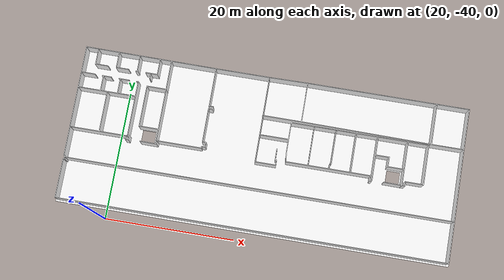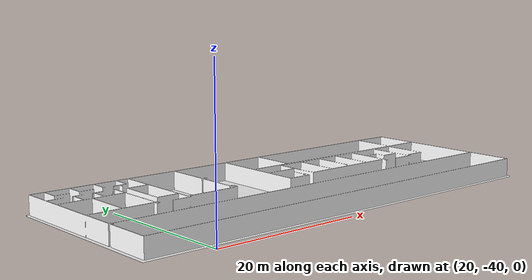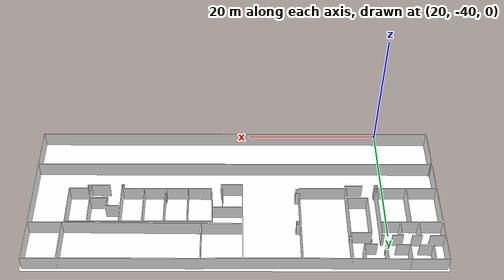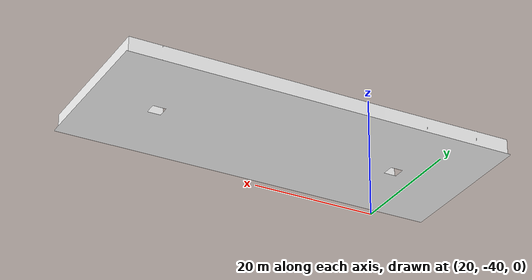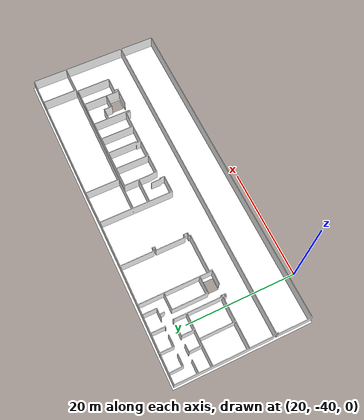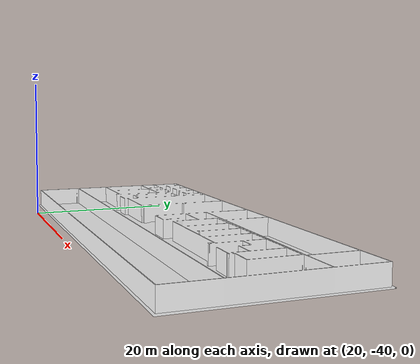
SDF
<?xml version='1.0' encoding='utf-8'?>
<sdf version="1.7">
  <model name="industrial_S1">
    <static>true</static>
    <link name="floor_1">
      <visual name="visual">
        <geometry>
          <mesh>
            <uri>model://industrial_S1/meshes/floor_1.obj</uri>
          </mesh>
        </geometry>
        <material>
          <diffuse>1.0 1.0 1.0</diffuse>
          <specular>0.1 0.1 0.1</specular>
          <pbr>
            <metal>
              <metalness>0.0</metalness>
              <albedo_map>model://industrial_S1/meshes/blue_linoleum.png</albedo_map>
            </metal>
          </pbr>
          <script>
            <uri>model://industrial_S1/meshes/</uri>
            <name>floor_1_Diffuse</name>
          </script>
        </material>
      </visual>
      <collision name="collision">
        <geometry>
          <mesh>
            <uri>model://industrial_S1/meshes/floor_1.obj</uri>
          </mesh>
        </geometry>
        <surface>
          <contact>
            <collide_bitmask>0x01</collide_bitmask>
          </contact>
        </surface>
      </collision>
    </link>
    <link name="wall_1">
      <visual name="wall_1">
        <geometry>
          <mesh>
            <uri>model://industrial_S1/meshes/wall_1.obj</uri>
          </mesh>
        </geometry>
        <transparency>0.0</transparency>
        <material>
          <diffuse>1.0 1.0 1.0</diffuse>
          <specular>0.1 0.1 0.1</specular>
          <pbr>
            <metal>
              <metalness>0.0</metalness>
              <albedo_map>model://industrial_S1/meshes/default.png</albedo_map>
            </metal>
          </pbr>
          <script>
            <uri>model://industrial_S1/meshes/</uri>
            <name>wall_1_Diffuse</name>
          </script>
        </material>
      </visual>
      <collision name="collision">
        <geometry>
          <mesh>
            <uri>model://industrial_S1/meshes/wall_1.obj</uri>
          </mesh>
        </geometry>
        <surface>
          <contact>
            <collide_bitmask>0x01</collide_bitmask>
          </contact>
        </surface>
      </collision>
      <pose>12.147159609737733 -38.28860911086189 0 0 0 0</pose>
    </link>
  </model>
</sdf>
